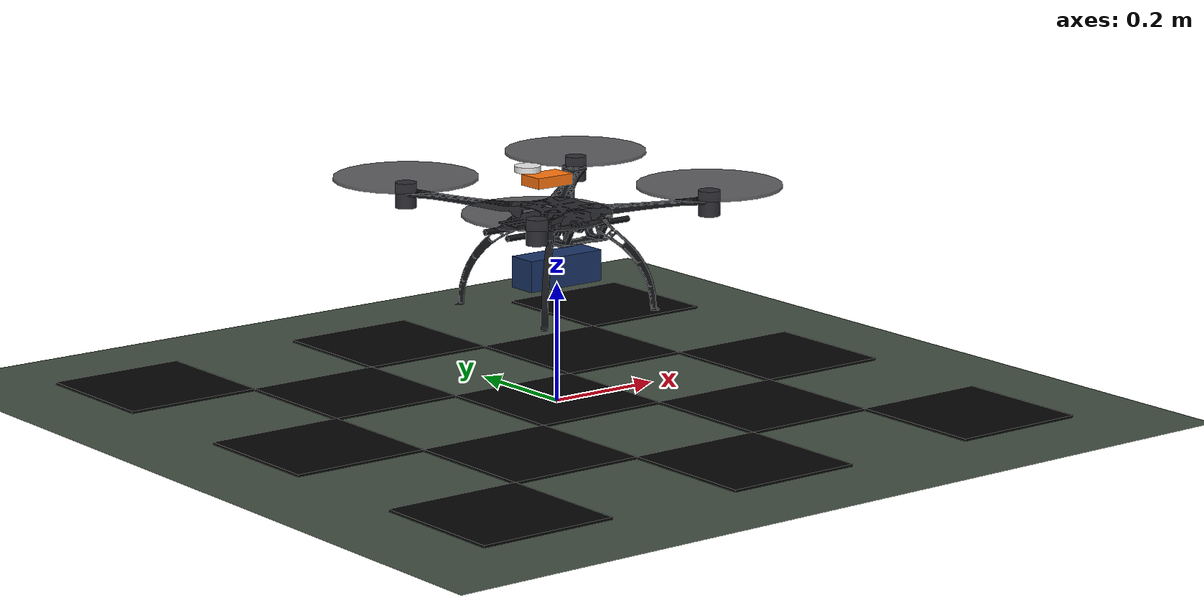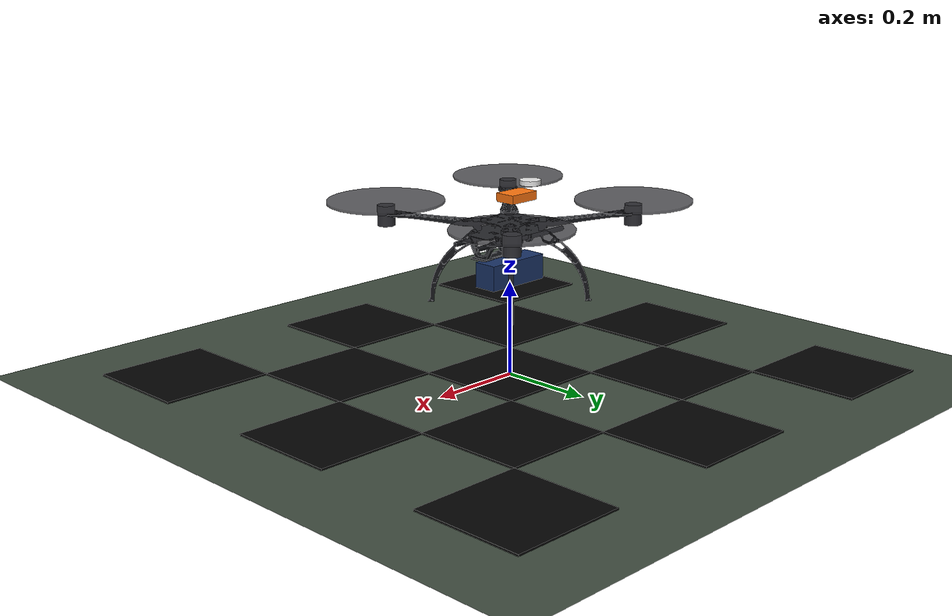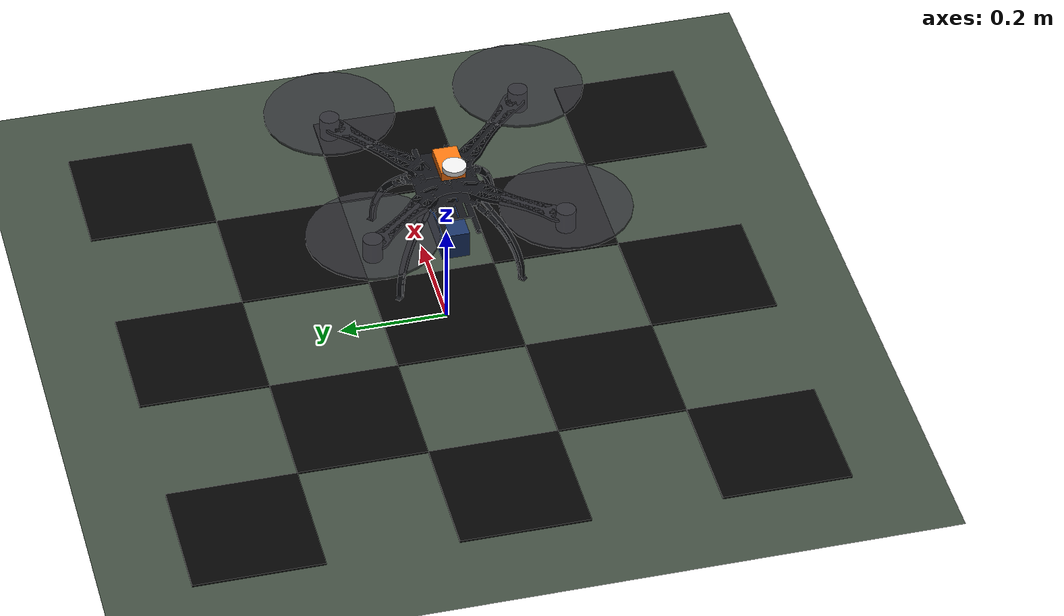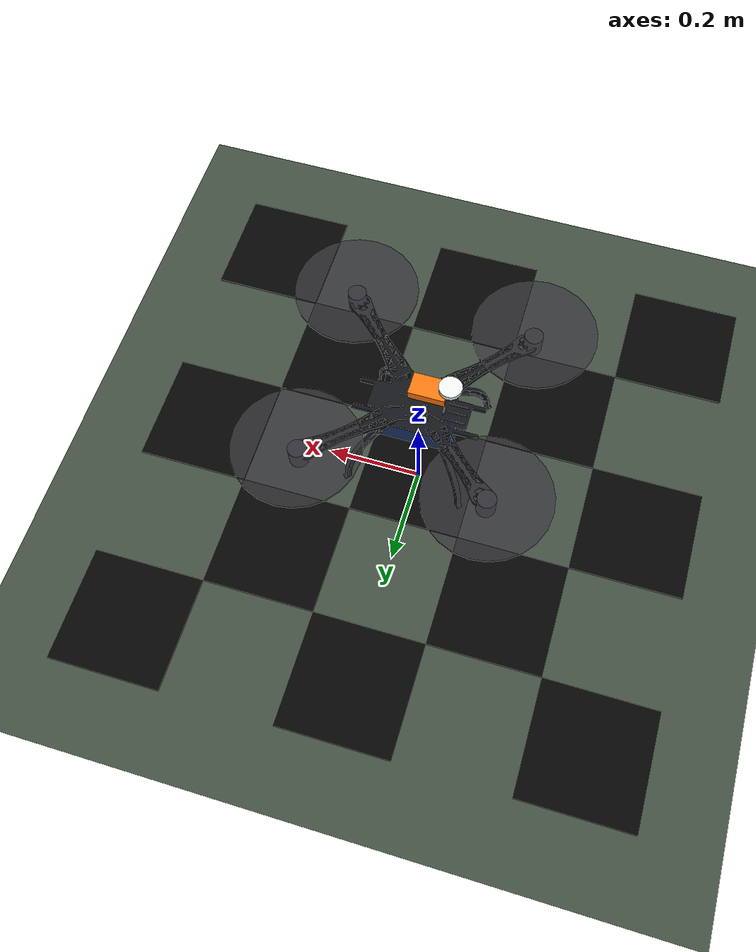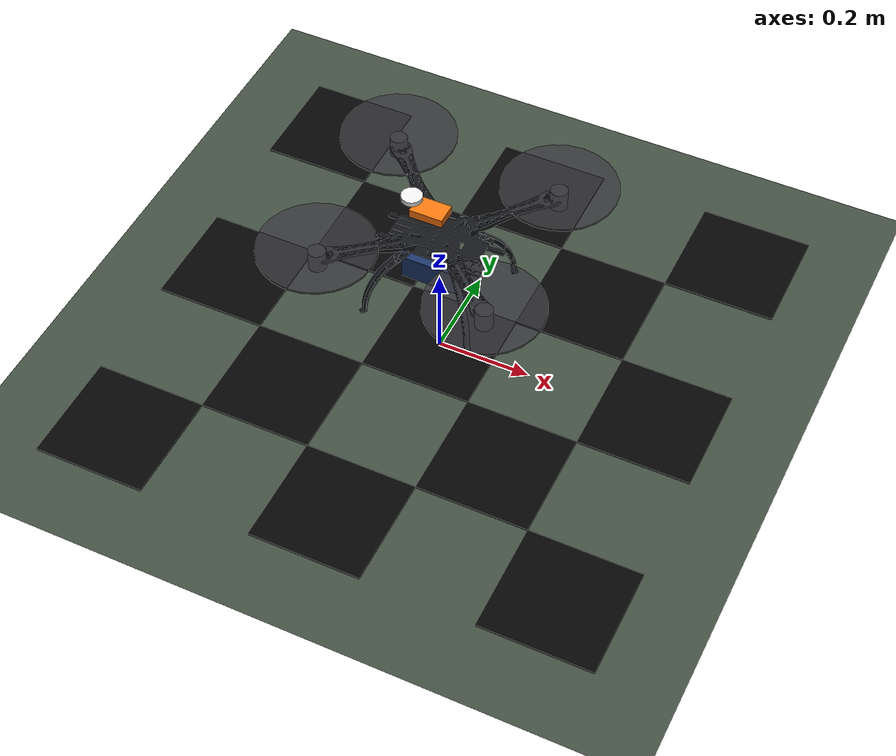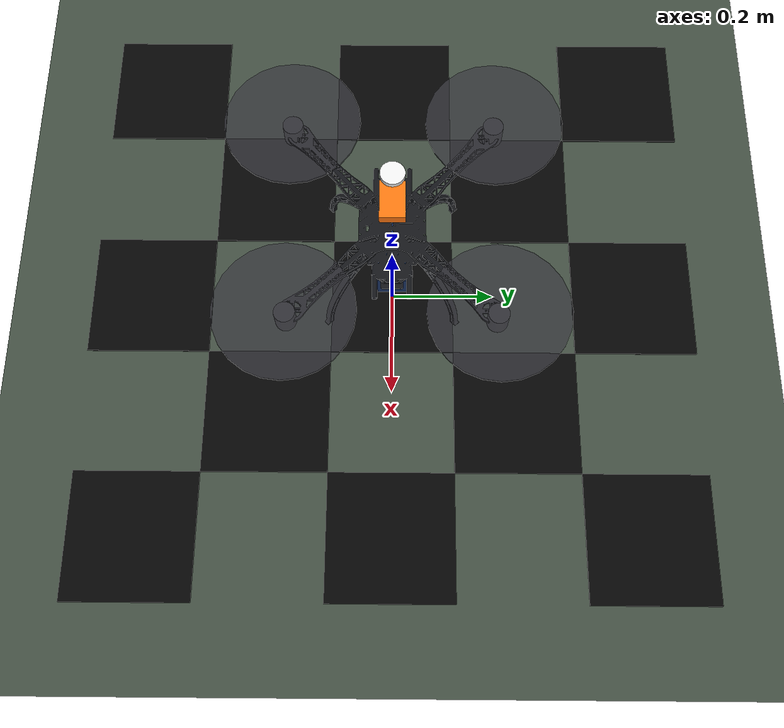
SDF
<?xml version="1.0"?>
<sdf version="1.9">
  <world name="s500_empty">
    <physics name="1ms" type="ignored">
      <max_step_size>0.001</max_step_size>
      <real_time_factor>1.0</real_time_factor>
    </physics>
    <gravity>0 0 -9.80665</gravity>
    <atmosphere type="adiabatic"/>
    <!-- Required by the Gazebo NavSat sensor so PX4 can establish a GPS origin. -->
    <spherical_coordinates>
      <surface_model>EARTH_WGS84</surface_model>
      <world_frame_orientation>ENU</world_frame_orientation>
      <latitude_deg>10.772100</latitude_deg>
      <longitude_deg>106.657900</longitude_deg>
      <elevation>10</elevation>
    </spherical_coordinates>

    <plugin filename="gz-sim-physics-system" name="gz::sim::systems::Physics"/>
    <plugin filename="gz-sim-user-commands-system" name="gz::sim::systems::UserCommands"/>
    <plugin filename="gz-sim-scene-broadcaster-system" name="gz::sim::systems::SceneBroadcaster"/>
    <plugin filename="gz-sim-imu-system" name="gz::sim::systems::Imu"/>
    <plugin filename="gz-sim-navsat-system" name="gz::sim::systems::NavSat"/>
    <plugin filename="gz-sim-air-pressure-system" name="gz::sim::systems::AirPressure"/>
    <plugin filename="gz-sim-magnetometer-system" name="gz::sim::systems::Magnetometer"/>
    <plugin filename="gz-sim-sensors-system" name="gz::sim::systems::Sensors">
      <render_engine>ogre</render_engine>
    </plugin>
    <plugin filename="libOpticalFlowSystem.so" name="custom::OpticalFlowSystem"/>

    <!-- Start close enough to inspect the detailed S500 CAD frame. -->
    <gui fullscreen="0">
      <camera name="user_camera">
        <pose>1.20 -1.20 0.85 0 0.33 2.356194</pose>
      </camera>
    </gui>

    <light name="sun" type="directional">
      <cast_shadows>true</cast_shadows>
      <pose>0 0 20 0 0 0</pose>
      <diffuse>0.95 0.95 0.95 1</diffuse>
      <specular>0.25 0.25 0.25 1</specular>
      <direction>-0.4 0.2 -1.0</direction>
    </light>

    <model name="ground">
      <static>true</static>
      <link name="ground_link">
        <collision name="collision">
          <geometry><plane><normal>0 0 1</normal><size>100 100</size></plane></geometry>
          <surface><friction><ode><mu>0.9</mu><mu2>0.9</mu2></ode></friction></surface>
        </collision>
        <visual name="visual">
          <geometry><plane><normal>0 0 1</normal><size>100 100</size></plane></geometry>
          <material><ambient>0.16 0.19 0.16 1</ambient><diffuse>0.25 0.30 0.25 1</diffuse></material>
        </visual>
      </link>
    </model>

    <!-- Visible high-contrast target gives the simulated MTF-01 camera detail to track. -->
    <model name="flow_target">
      <static>true</static>
      <link name="target_link">
        <visual name="tile_0"><pose>-0.48 -0.48 0.002 0 0 0</pose><cast_shadows>false</cast_shadows><geometry><box><size>0.24 0.24 0.004</size></box></geometry><material><ambient>0.015 0.015 0.015 1</ambient><diffuse>0.015 0.015 0.015 1</diffuse></material></visual>
        <visual name="tile_1"><pose>-0.48 0 0.002 0 0 0</pose><cast_shadows>false</cast_shadows><geometry><box><size>0.24 0.24 0.004</size></box></geometry><material><ambient>0.015 0.015 0.015 1</ambient><diffuse>0.015 0.015 0.015 1</diffuse></material></visual>
        <visual name="tile_2"><pose>-0.48 0.48 0.002 0 0 0</pose><cast_shadows>false</cast_shadows><geometry><box><size>0.24 0.24 0.004</size></box></geometry><material><ambient>0.015 0.015 0.015 1</ambient><diffuse>0.015 0.015 0.015 1</diffuse></material></visual>
        <visual name="tile_3"><pose>-0.24 -0.24 0.002 0 0 0</pose><cast_shadows>false</cast_shadows><geometry><box><size>0.24 0.24 0.004</size></box></geometry><material><ambient>0.015 0.015 0.015 1</ambient><diffuse>0.015 0.015 0.015 1</diffuse></material></visual>
        <visual name="tile_4"><pose>-0.24 0.24 0.002 0 0 0</pose><cast_shadows>false</cast_shadows><geometry><box><size>0.24 0.24 0.004</size></box></geometry><material><ambient>0.015 0.015 0.015 1</ambient><diffuse>0.015 0.015 0.015 1</diffuse></material></visual>
        <visual name="tile_5"><pose>0 -0.48 0.002 0 0 0</pose><cast_shadows>false</cast_shadows><geometry><box><size>0.24 0.24 0.004</size></box></geometry><material><ambient>0.015 0.015 0.015 1</ambient><diffuse>0.015 0.015 0.015 1</diffuse></material></visual>
        <visual name="tile_6"><pose>0 0 0.002 0 0 0</pose><cast_shadows>false</cast_shadows><geometry><box><size>0.24 0.24 0.004</size></box></geometry><material><ambient>0.015 0.015 0.015 1</ambient><diffuse>0.015 0.015 0.015 1</diffuse></material></visual>
        <visual name="tile_7"><pose>0 0.48 0.002 0 0 0</pose><cast_shadows>false</cast_shadows><geometry><box><size>0.24 0.24 0.004</size></box></geometry><material><ambient>0.015 0.015 0.015 1</ambient><diffuse>0.015 0.015 0.015 1</diffuse></material></visual>
        <visual name="tile_8"><pose>0.24 -0.24 0.002 0 0 0</pose><cast_shadows>false</cast_shadows><geometry><box><size>0.24 0.24 0.004</size></box></geometry><material><ambient>0.015 0.015 0.015 1</ambient><diffuse>0.015 0.015 0.015 1</diffuse></material></visual>
        <visual name="tile_9"><pose>0.24 0.24 0.002 0 0 0</pose><cast_shadows>false</cast_shadows><geometry><box><size>0.24 0.24 0.004</size></box></geometry><material><ambient>0.015 0.015 0.015 1</ambient><diffuse>0.015 0.015 0.015 1</diffuse></material></visual>
        <visual name="tile_10"><pose>0.48 -0.48 0.002 0 0 0</pose><cast_shadows>false</cast_shadows><geometry><box><size>0.24 0.24 0.004</size></box></geometry><material><ambient>0.015 0.015 0.015 1</ambient><diffuse>0.015 0.015 0.015 1</diffuse></material></visual>
        <visual name="tile_11"><pose>0.48 0 0.002 0 0 0</pose><cast_shadows>false</cast_shadows><geometry><box><size>0.24 0.24 0.004</size></box></geometry><material><ambient>0.015 0.015 0.015 1</ambient><diffuse>0.015 0.015 0.015 1</diffuse></material></visual>
        <visual name="tile_12"><pose>0.48 0.48 0.002 0 0 0</pose><cast_shadows>false</cast_shadows><geometry><box><size>0.24 0.24 0.004</size></box></geometry><material><ambient>0.015 0.015 0.015 1</ambient><diffuse>0.015 0.015 0.015 1</diffuse></material></visual>
      </link>
    </model>

    <include>
      <uri>model://s500_quad_x</uri>
      <name>s500_quad_x</name>
      <pose>0 0 0.310 0 0 0</pose>
    </include>
  </world>
</sdf>

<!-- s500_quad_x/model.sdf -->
<sdf version="1.9">
  <model name="s500_quad_x">
    <self_collide>false</self_collide>
    <allow_auto_disable>false</allow_auto_disable>

    <link name="base_link">
      <inertial>
        <mass>1.10</mass>
        <inertia>
          <ixx>0.018</ixx><iyy>0.021</iyy><izz>0.035</izz>
          <ixy>0</ixy><ixz>0</ixz><iyz>0</iyz>
        </inertia>
      </inertial>

      <!-- Detailed S500 CAD frame, including the original CAD landing gear. -->
      <visual name="s500_cad_frame">
        <geometry>
          <mesh>
            <uri>model://s500_quad_x/meshes/s500_frame_full.stl</uri>
            <scale>0.001 0.001 0.001</scale>
          </mesh>
        </geometry>
        <material>
          <ambient>0.025 0.028 0.035 1</ambient>
          <diffuse>0.075 0.080 0.095 1</diffuse>
          <specular>0.16 0.16 0.18 1</specular>
        </material>
      </visual>
      <visual name="battery_4s_6200mah">
        <pose>0 0 -0.085 0 0 0</pose>
        <geometry><box><size>0.145 0.052 0.052</size></box></geometry>
        <material><ambient>0.06 0.10 0.20 1</ambient><diffuse>0.10 0.20 0.40 1</diffuse></material>
      </visual>
      <visual name="pixhawk_6c">
        <pose>-0.020 0 0.067 0 0 0</pose>
        <geometry><box><size>0.070 0.045 0.018</size></box></geometry>
        <material><ambient>0.85 0.33 0.04 1</ambient><diffuse>1 0.46 0.06 1</diffuse></material>
      </visual>
      <visual name="gps_m10">
        <pose>-0.060 0 0.090 0 0 0</pose>
        <geometry><cylinder><radius>0.022</radius><length>0.010</length></cylinder></geometry>
        <material><ambient>0.75 0.75 0.75 1</ambient><diffuse>0.92 0.92 0.92 1</diffuse></material>
      </visual>
      <visual name="mtf01_optical_flow_housing">
        <pose>0.045 0 -0.094 0 0 0</pose>
        <geometry><box><size>0.038 0.032 0.014</size></box></geometry>
        <material><ambient>0.015 0.015 0.015 1</ambient><diffuse>0.04 0.04 0.04 1</diffuse></material>
      </visual>
      <visual name="mtf01_lens">
        <pose>0.045 0 -0.104 0 0 0</pose>
        <geometry><cylinder><radius>0.008</radius><length>0.004</length></cylinder></geometry>
        <material><ambient>0.02 0.08 0.12 1</ambient><diffuse>0.03 0.18 0.30 1</diffuse></material>
      </visual>

      <collision name="centre_plate_collision">
        <geometry><box><size>0.225 0.205 0.075</size></box></geometry>
      </collision>
      <collision name="battery_collision">
        <pose>0 0 -0.085 0 0 0</pose>
        <geometry><box><size>0.145 0.052 0.052</size></box></geometry>
      </collision>

      <!-- The full CAD mesh above provides the landing gear visuals. -->
      <collision name="leg_collision">
        <pose>0 0 -0.055 0 0 0</pose>
        <geometry><box><size>0.400 0.400 0.200</size></box></geometry>
      </collision>

      <!-- The SDF has native IMU, barometer and GPS placeholders for PX4 SITL. -->
      <sensor name="imu_sensor" type="imu">
        <gz_frame_id>base_link</gz_frame_id>
        <always_on>true</always_on><update_rate>250</update_rate>
      </sensor>
      <sensor name="navsat_sensor" type="navsat">
        <pose>-0.060 0 0.095 0 0 0</pose>
        <gz_frame_id>base_link</gz_frame_id>
        <always_on>true</always_on><update_rate>10</update_rate>
      </sensor>
      <sensor name="air_pressure_sensor" type="air_pressure">
        <gz_frame_id>base_link</gz_frame_id>
        <always_on>true</always_on><update_rate>50</update_rate>
      </sensor>
      <sensor name="magnetometer_sensor" type="magnetometer">
        <gz_frame_id>base_link</gz_frame_id>
        <always_on>true</always_on><update_rate>100</update_rate>
      </sensor>
    </link>

    <!--
      MTF-01 simulation payload.  PX4's Gazebo bridge subscribes to these
      exact links: flow_link for optical flow and lidar_sensor_link for the
      downward range measurement.
    -->
    <link name="flow_link">
      <pose relative_to="base_link">0.045 0 -0.104 0 1.570796 0</pose>
      <inertial>
        <mass>0.015</mass>
        <inertia><ixx>0.000003</ixx><iyy>0.000003</iyy><izz>0.000004</izz><ixy>0</ixy><ixz>0</ixz><iyz>0</iyz></inertia>
      </inertial>
      <sensor name="flow_camera" type="camera">
        <gz_frame_id>flow_link</gz_frame_id>
        <pose>0 0 0 0 1.5707 0</pose>
        <camera>
          <horizontal_fov>0.733038</horizontal_fov>
          <image><width>100</width><height>100</height></image>
          <clip><near>0.10</near><far>30.0</far></clip>
        </camera>
        <always_on>true</always_on><update_rate>50</update_rate><visualize>false</visualize>
      </sensor>
      <sensor name="optical_flow" type="custom" gz:type="optical_flow">
        <gz_frame_id>flow_link</gz_frame_id>
        <always_on>true</always_on><update_rate>50</update_rate><visualize>false</visualize>
      </sensor>
    </link>
    <joint name="mtf01_optical_flow_joint" type="fixed">
      <parent>base_link</parent><child>flow_link</child>
    </joint>

    <link name="lidar_sensor_link">
      <pose relative_to="base_link">0.045 0 -0.104 0 1.570796 0</pose>
      <inertial>
        <mass>0.005</mass>
        <inertia><ixx>0.000001</ixx><iyy>0.000001</iyy><izz>0.000001</izz><ixy>0</ixy><ixz>0</ixz><iyz>0</iyz></inertia>
      </inertial>
      <sensor name="lidar" type="gpu_lidar">
        <gz_frame_id>lidar_sensor_link</gz_frame_id>
        <pose>0 0 0 3.141593 0 0</pose>
        <update_rate>50</update_rate>
        <ray>
          <scan>
            <horizontal><samples>1</samples><resolution>1</resolution><min_angle>0</min_angle><max_angle>0</max_angle></horizontal>
            <vertical><samples>1</samples><resolution>1</resolution><min_angle>0</min_angle><max_angle>0</max_angle></vertical>
          </scan>
          <range><min>0.10</min><max>8.0</max><resolution>0.01</resolution></range>
        </ray>
        <always_on>true</always_on><visualize>false</visualize>
      </sensor>
    </link>
    <joint name="mtf01_range_joint" type="fixed">
      <parent>base_link</parent><child>lidar_sensor_link</child>
    </joint>

    <!-- Arms: motor centres are (+/- 0.1768, +/- 0.1768) m: 500 mm diagonal. -->
    <link name="arm_front_right">
      <pose relative_to="base_link">0.0884 -0.0884 0.018 0 0 -0.785398</pose>
      <inertial><mass>0.060</mass><inertia><ixx>0.00015</ixx><iyy>0.00080</iyy><izz>0.00085</izz></inertia></inertial>
      <collision name="collision"><geometry><box><size>0.260 0.030 0.018</size></box></geometry></collision>
    </link>
    <link name="arm_rear_left">
      <pose relative_to="base_link">-0.0884 0.0884 0.018 0 0 2.356194</pose>
      <inertial><mass>0.060</mass><inertia><ixx>0.00015</ixx><iyy>0.00080</iyy><izz>0.00085</izz></inertia></inertial>
      <collision name="collision"><geometry><box><size>0.260 0.030 0.018</size></box></geometry></collision>
    </link>
    <link name="arm_front_left">
      <pose relative_to="base_link">0.0884 0.0884 0.018 0 0 0.785398</pose>
      <inertial><mass>0.060</mass><inertia><ixx>0.00015</ixx><iyy>0.00080</iyy><izz>0.00085</izz></inertia></inertial>
      <collision name="collision"><geometry><box><size>0.260 0.030 0.018</size></box></geometry></collision>
    </link>
    <link name="arm_rear_right">
      <pose relative_to="base_link">-0.0884 -0.0884 0.018 0 0 -2.356194</pose>
      <inertial><mass>0.060</mass><inertia><ixx>0.00015</ixx><iyy>0.00080</iyy><izz>0.00085</izz></inertia></inertial>
      <collision name="collision"><geometry><box><size>0.260 0.030 0.018</size></box></geometry></collision>
    </link>

    <joint name="arm_front_right_joint" type="fixed"><parent>base_link</parent><child>arm_front_right</child></joint>
    <joint name="arm_rear_left_joint" type="fixed"><parent>base_link</parent><child>arm_rear_left</child></joint>
    <joint name="arm_front_left_joint" type="fixed"><parent>base_link</parent><child>arm_front_left</child></joint>
    <joint name="arm_rear_right_joint" type="fixed"><parent>base_link</parent><child>arm_rear_right</child></joint>

    <!-- Rotor links carry a 9.45 inch propeller visual and spin about local +Z. -->
    <link name="rotor_front_right">
      <pose relative_to="base_link">0.176777 -0.176777 0.052 0 0 0</pose>
      <inertial><mass>0.050</mass><inertia><ixx>0.00010</ixx><iyy>0.00010</iyy><izz>0.00018</izz></inertia></inertial>
      <visual name="motor"><pose>0 0 -0.020 0 0 0</pose><geometry><cylinder><radius>0.018</radius><length>0.042</length></cylinder></geometry><material><ambient>0.08 0.08 0.09 1</ambient><diffuse>0.18 0.18 0.20 1</diffuse></material></visual>
      <visual name="propeller"><pose>0 0 0.009 0 0 0</pose><geometry><cylinder><radius>0.120</radius><length>0.005</length></cylinder></geometry><material><ambient>0.10 0.10 0.11 0.80</ambient><diffuse>0.22 0.22 0.24 0.80</diffuse></material></visual>
    </link>
    <link name="rotor_rear_left">
      <pose relative_to="base_link">-0.176777 0.176777 0.052 0 0 0</pose>
      <inertial><mass>0.050</mass><inertia><ixx>0.00010</ixx><iyy>0.00010</iyy><izz>0.00018</izz></inertia></inertial>
      <visual name="motor"><pose>0 0 -0.020 0 0 0</pose><geometry><cylinder><radius>0.018</radius><length>0.042</length></cylinder></geometry><material><ambient>0.08 0.08 0.09 1</ambient><diffuse>0.18 0.18 0.20 1</diffuse></material></visual>
      <visual name="propeller"><pose>0 0 0.009 0 0 0</pose><geometry><cylinder><radius>0.120</radius><length>0.005</length></cylinder></geometry><material><ambient>0.10 0.10 0.11 0.80</ambient><diffuse>0.22 0.22 0.24 0.80</diffuse></material></visual>
    </link>
    <link name="rotor_front_left">
      <pose relative_to="base_link">0.176777 0.176777 0.052 0 0 0</pose>
      <inertial><mass>0.050</mass><inertia><ixx>0.00010</ixx><iyy>0.00010</iyy><izz>0.00018</izz></inertia></inertial>
      <visual name="motor"><pose>0 0 -0.020 0 0 0</pose><geometry><cylinder><radius>0.018</radius><length>0.042</length></cylinder></geometry><material><ambient>0.08 0.08 0.09 1</ambient><diffuse>0.18 0.18 0.20 1</diffuse></material></visual>
      <visual name="propeller"><pose>0 0 0.009 0 0 0</pose><geometry><cylinder><radius>0.120</radius><length>0.005</length></cylinder></geometry><material><ambient>0.10 0.10 0.11 0.80</ambient><diffuse>0.22 0.22 0.24 0.80</diffuse></material></visual>
    </link>
    <link name="rotor_rear_right">
      <pose relative_to="base_link">-0.176777 -0.176777 0.052 0 0 0</pose>
      <inertial><mass>0.050</mass><inertia><ixx>0.00010</ixx><iyy>0.00010</iyy><izz>0.00018</izz></inertia></inertial>
      <visual name="motor"><pose>0 0 -0.020 0 0 0</pose><geometry><cylinder><radius>0.018</radius><length>0.042</length></cylinder></geometry><material><ambient>0.08 0.08 0.09 1</ambient><diffuse>0.18 0.18 0.20 1</diffuse></material></visual>
      <visual name="propeller"><pose>0 0 0.009 0 0 0</pose><geometry><cylinder><radius>0.120</radius><length>0.005</length></cylinder></geometry><material><ambient>0.10 0.10 0.11 0.80</ambient><diffuse>0.22 0.22 0.24 0.80</diffuse></material></visual>
    </link>

    <joint name="rotor_front_right_joint" type="revolute">
      <parent>base_link</parent><child>rotor_front_right</child>
      <axis><xyz expressed_in="rotor_front_right">0 0 1</xyz><limit><effort>3</effort><velocity>1200</velocity></limit><dynamics><damping>0.00002</damping></dynamics></axis>
    </joint>
    <joint name="rotor_rear_left_joint" type="revolute">
      <parent>base_link</parent><child>rotor_rear_left</child>
      <axis><xyz expressed_in="rotor_rear_left">0 0 1</xyz><limit><effort>3</effort><velocity>1200</velocity></limit><dynamics><damping>0.00002</damping></dynamics></axis>
    </joint>
    <joint name="rotor_front_left_joint" type="revolute">
      <parent>base_link</parent><child>rotor_front_left</child>
      <axis><xyz expressed_in="rotor_front_left">0 0 1</xyz><limit><effort>3</effort><velocity>1200</velocity></limit><dynamics><damping>0.00002</damping></dynamics></axis>
    </joint>
    <joint name="rotor_rear_right_joint" type="revolute">
      <parent>base_link</parent><child>rotor_rear_right</child>
      <axis><xyz expressed_in="rotor_rear_right">0 0 1</xyz><limit><effort>3</effort><velocity>1200</velocity></limit><dynamics><damping>0.00002</damping></dynamics></axis>
    </joint>

    <!-- Provisional 9450/940 kV coefficients; they will be identified from a thrust stand. -->
    <plugin filename="gz-sim-multicopter-motor-model-system" name="gz::sim::systems::MulticopterMotorModel">
      <jointName>rotor_front_right_joint</jointName><linkName>rotor_front_right</linkName>
      <turningDirection>ccw</turningDirection><timeConstantUp>0.012</timeConstantUp><timeConstantDown>0.025</timeConstantDown>
      <maxRotVelocity>1050</maxRotVelocity><motorConstant>9.0e-6</motorConstant><momentConstant>0.016</momentConstant>
      <commandSubTopic>command/motor_speed</commandSubTopic><motorNumber>0</motorNumber>
      <rotorDragCoefficient>8.0e-5</rotorDragCoefficient><rollingMomentCoefficient>1.0e-6</rollingMomentCoefficient><rotorVelocitySlowdownSim>10</rotorVelocitySlowdownSim><motorType>velocity</motorType>
    </plugin>
    <plugin filename="gz-sim-multicopter-motor-model-system" name="gz::sim::systems::MulticopterMotorModel">
      <jointName>rotor_rear_left_joint</jointName><linkName>rotor_rear_left</linkName>
      <turningDirection>ccw</turningDirection><timeConstantUp>0.012</timeConstantUp><timeConstantDown>0.025</timeConstantDown>
      <maxRotVelocity>1050</maxRotVelocity><motorConstant>9.0e-6</motorConstant><momentConstant>0.016</momentConstant>
      <commandSubTopic>command/motor_speed</commandSubTopic><motorNumber>1</motorNumber>
      <rotorDragCoefficient>8.0e-5</rotorDragCoefficient><rollingMomentCoefficient>1.0e-6</rollingMomentCoefficient><rotorVelocitySlowdownSim>10</rotorVelocitySlowdownSim><motorType>velocity</motorType>
    </plugin>
    <plugin filename="gz-sim-multicopter-motor-model-system" name="gz::sim::systems::MulticopterMotorModel">
      <jointName>rotor_front_left_joint</jointName><linkName>rotor_front_left</linkName>
      <turningDirection>cw</turningDirection><timeConstantUp>0.012</timeConstantUp><timeConstantDown>0.025</timeConstantDown>
      <maxRotVelocity>1050</maxRotVelocity><motorConstant>9.0e-6</motorConstant><momentConstant>0.016</momentConstant>
      <commandSubTopic>command/motor_speed</commandSubTopic><motorNumber>2</motorNumber>
      <rotorDragCoefficient>8.0e-5</rotorDragCoefficient><rollingMomentCoefficient>1.0e-6</rollingMomentCoefficient><rotorVelocitySlowdownSim>10</rotorVelocitySlowdownSim><motorType>velocity</motorType>
    </plugin>
    <plugin filename="gz-sim-multicopter-motor-model-system" name="gz::sim::systems::MulticopterMotorModel">
      <jointName>rotor_rear_right_joint</jointName><linkName>rotor_rear_right</linkName>
      <turningDirection>cw</turningDirection><timeConstantUp>0.012</timeConstantUp><timeConstantDown>0.025</timeConstantDown>
      <maxRotVelocity>1050</maxRotVelocity><motorConstant>9.0e-6</motorConstant><momentConstant>0.016</momentConstant>
      <commandSubTopic>command/motor_speed</commandSubTopic><motorNumber>3</motorNumber>
      <rotorDragCoefficient>8.0e-5</rotorDragCoefficient><rollingMomentCoefficient>1.0e-6</rollingMomentCoefficient><rotorVelocitySlowdownSim>10</rotorVelocitySlowdownSim><motorType>velocity</motorType>
    </plugin>
  </model>
</sdf>
